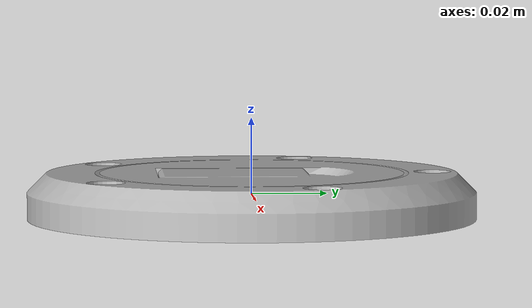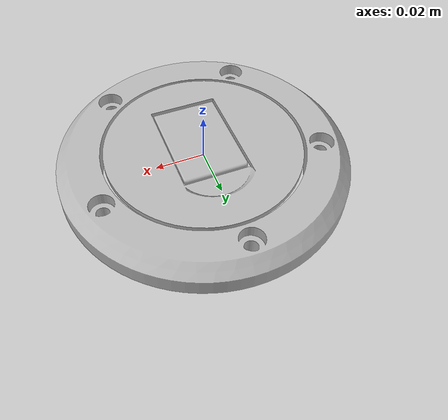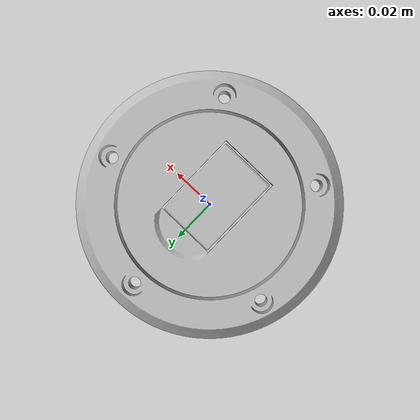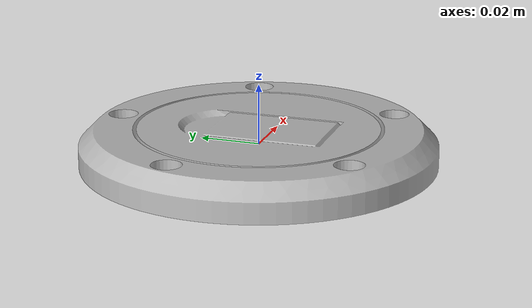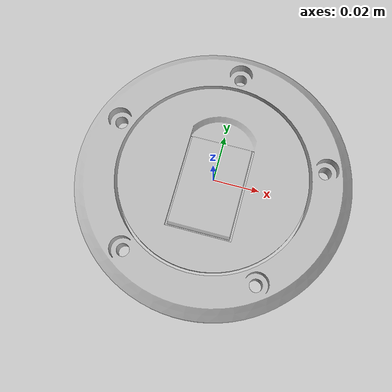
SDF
<?xml version="1.0" ?>

<sdf version="1.5">
  <model name="fuel_tank_tap">
    <static>false</static>
    <link name="bowl_link">
      <collision name="collision">
        <geometry>
		  <cylinder>
			  <radius>0.05897</radius>
			  <length>0.012</length>
		  </cylinder>
        </geometry>
		<surface>
			<friction>
				<ode>
					<mu>0.98</mu>
					<mu2>0.98</mu2>
				</ode>
			</friction>
		</surface>
      </collision>
      <visual name="visual">
        <geometry>
          <mesh>
            <uri>model://fuel_tank_tap/meshes/fuel_tank_tap.dae</uri>
          </mesh>
        </geometry>
        <material>
		    <script>
		        <uri>file://media/materials/scripts/gazebo.material</uri>
		        <name>Gazebo/CoM</name>
		    </script>
        </material>
      </visual>
	  <inertial>
		<pose>0.0 0.0 0.0 0.0 0.0 0.0</pose>
        <mass>0.2</mass>
		<inertia>
			<ixx>0.00017630253125</ixx>
			<iyy>0.00017630253125</iyy>
			<izz>0.0003478050625</izz>
			<ixy>0.0</ixy>
			<ixz>0.0</ixz>
			<iyz>0.0</iyz>
		</inertia>
	  </inertial>
	</link>

  </model>
</sdf>
